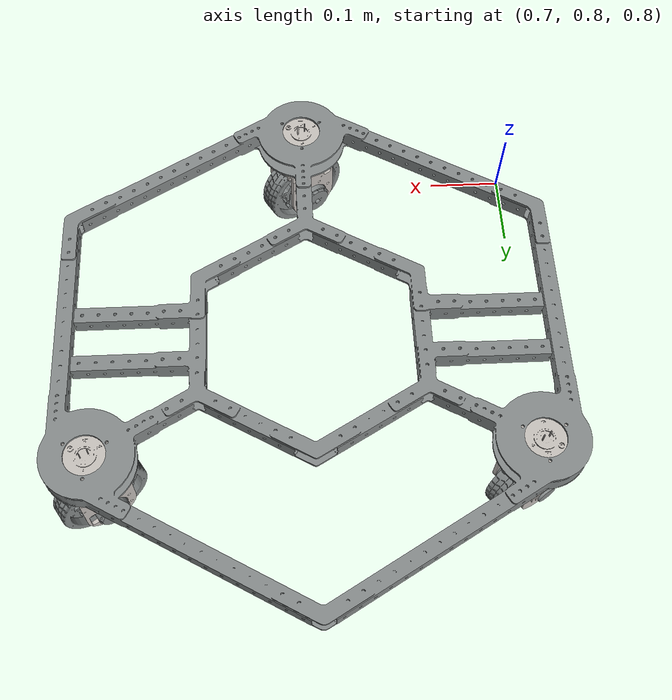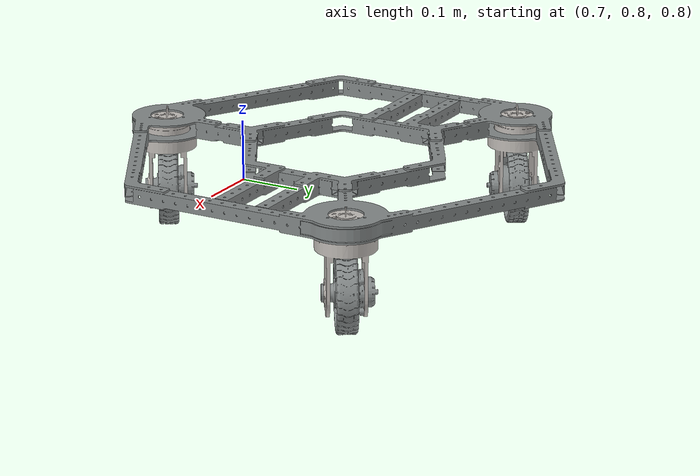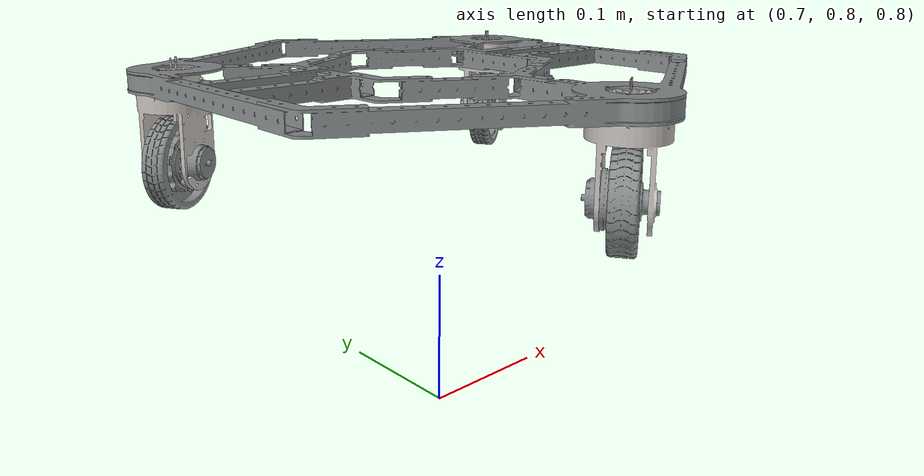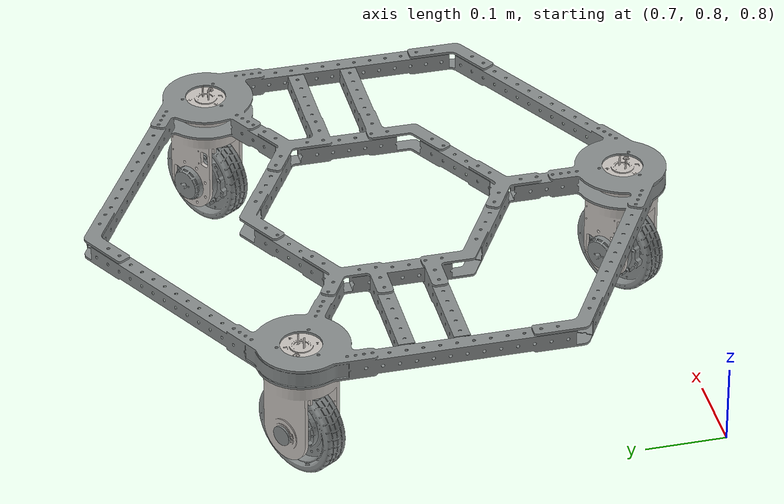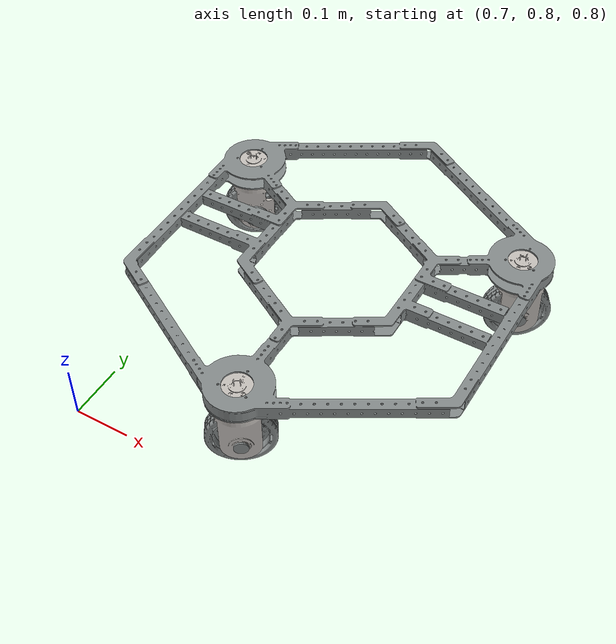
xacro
<?xml version='1.0'?>
<robot name="my_robot" xmlns:xacro="http://www.ros.org/wiki/xacro">

  <xacro:include filename="$(find my_robot_description)/urdf/myrobot_ros2_control.xacro" />
  <!-- 虚拟的根节点（用于全局定位） -->

  <link name="world_link"/>

  <!-- 虚拟关节，将 world_link 连接到 base_link，调整整体旋转 -->
  <joint name="world_joint" type="fixed">
    <origin xyz="1 1 1" rpy="0 -1.5708 0" /> <!-- 绕 Z 轴旋转 90 度 -->
    <parent link="world_link" />
    <child link="base_link" />
  </joint>

  <link
    name="base_link">
    <inertial>
      <origin
        xyz="-0.012503 0.15441 1.2733E-06"
        rpy="0 0 0" />
      <mass
        value="2.9926" />
      <inertia
        ixx="0.0071612"
        ixy="3.4189E-12"
        ixz="-6.9784E-12"
        iyy="0.0036971"
        iyz="2.6949E-10"
        izz="0.0035447" />
    </inertial>
    <visual>
      <origin
        xyz="0 0 0"
        rpy="0 0 0" />
      <geometry>
        <mesh
          filename="$(find my_robot_description)/meshes/base_link.STL" />

      </geometry>
      <material
        name="">
        <color
          rgba="0.52941 0.54902 0.54902 1" />
      </material>
    </visual>
    <collision>
      <origin
        xyz="0 0 0"
        rpy="0 0 0" />
      <geometry>
        <mesh
          filename="$(find my_robot_description)/meshes/base_link.STL" />
      </geometry>
    </collision>
  </link>
  <link
    name="wheel1">
    <inertial>
      <origin
        xyz="-0.042891 -0.00023895 0.010184"
        rpy="0 0 0" />
      <mass
        value="2.9855" />
      <inertia
        ixx="0.001527"
        ixy="1.1575E-05"
        ixz="-2.795E-06"
        iyy="0.0011138"
        iyz="-1.1939E-05"
        izz="0.0013147" />
    </inertial>
    <visual>
      <origin
        xyz="0 0 0"
        rpy="0 0 0" />
      <geometry>
        <mesh
          filename="$(find my_robot_description)/meshes/wheel1.STL" />
      </geometry>
      <material
        name="">
        <color
          rgba="0.77647 0.75686 0.73725 1" />
      </material>
    </visual>
    <collision>
      <origin
        xyz="0 0 0"
        rpy="0 0 0" />
      <geometry>
        <mesh
          filename="$(find my_robot_description)/meshes/wheel1.STL" />
      </geometry>
    </collision>
  </link>
  <joint
    name="base_wheel1"
    type="continuous">
    <origin
      xyz="-0.00299999999999984 -0.150775765619182 0"
      rpy="2.1 0 0" />
    <parent
      link="base_link" />
    <child
      link="wheel1" />
    <axis
      xyz="-1 0 0" />
  </joint>
  <link
    name="wheel1_1">
    <inertial>
      <origin
        xyz="-4.588E-06 0.0014967 -0.035074"
        rpy="0 0 0" />
      <mass
        value="0.93018" />
      <inertia
        ixx="0.0011543"
        ixy="-3.2673E-08"
        ixz="-9.8032E-09"
        iyy="0.0011577"
        iyz="-4.1516E-05"
        izz="0.0021796" />
    </inertial>
    <visual>
      <origin
        xyz="0 0 0"
        rpy="0 0 0" />
      <geometry>
        <mesh
          filename="$(find my_robot_description)/meshes/wheel1_1.STL" />
      </geometry>
      <material
        name="">
        <color
          rgba="0.52941 0.54902 0.54902 1" />
      </material>
    </visual>
    <collision>
      <origin
        xyz="0 0 0"
        rpy="0 0 0" />
      <geometry>
        <mesh
          filename="$(find my_robot_description)/meshes/wheel1_1.STL" />
      </geometry>
    </collision>
  </link>
  <joint
    name="wheel_wheel1"
    type="continuous">
    <origin
      xyz="-0.110999999999989 -0.00140571886434757 0.0344713497628748"
      rpy="0 0 0" />
    <parent
      link="wheel1" />
    <child
      link="wheel1_1" />
    <axis
      xyz="0 -0.0407454743289704 0.999169558344182" />
  </joint>
  <link
    name="wheel2">
    <inertial>
      <origin
        xyz="-0.042891 0.0089389 -0.0048849"
        rpy="0 0 0" />
      <mass
        value="2.9855" />
      <inertia
        ixx="0.001527"
        ixy="-8.2082E-06"
        ixz="-8.6269E-06"
        iyy="0.0012748"
        iyz="-8.1009E-05"
        izz="0.0011537" />
    </inertial>
    <visual>
      <origin
        xyz="0 0 0"
        rpy="0 0 0" />
      <geometry>
        <mesh
          filename="$(find my_robot_description)/meshes/wheel2.STL" />
      </geometry>
      <material
        name="">
        <color
          rgba="0.77647 0.75686 0.73725 1" />
      </material>
    </visual>
    <collision>
      <origin
        xyz="0 0 0"
        rpy="0 0 0" />
      <geometry>
        <mesh
          filename="$(find my_robot_description)/meshes/wheel2.STL" />
      </geometry>
    </collision>
  </link>
  <joint
    name="base_wheel2"
    type="continuous">
    <origin
      xyz="-0.00300000000000036 0.306937333383681 0.264258993872179"
      rpy="1.05 0 0" />
    <parent
      link="base_link" />
    <child
      link="wheel2" />
    <axis
      xyz="-1 0 0" />
  </joint>
  <link
    name="wheel2_2">
    <inertial>
      <origin
        xyz="-4.5877E-06 -0.031123 0.016241"
        rpy="0 0 0" />
      <mass
        value="0.93018" />
      <inertia
        ixx="0.0011543"
        ixy="7.8513E-09"
        ixz="3.3198E-08"
        iyy="0.0019601"
        iyz="-0.00042173"
        izz="0.0013772" />
    </inertial>
    <visual>
      <origin
        xyz="0 0 0"
        rpy="0 0 0" />
      <geometry>
        <mesh
          filename="$(find my_robot_description)/meshes/wheel2_2.STL" />
      </geometry>
      <material
        name="">
        <color
          rgba="0.52941 0.54902 0.54902 1" />
      </material>
    </visual>
    <collision>
      <origin
        xyz="0 0 0"
        rpy="0 0 0" />
      <geometry>
        <mesh
          filename="$(find my_robot_description)/meshes/wheel2_2.STL" />
      </geometry>
    </collision>
  </link>
  <joint
    name="wheel_wheel2"
    type="continuous">
    <origin
      xyz="-0.110999999999989 0.0305559240295608 -0.0160182866343324"
      rpy="0 0 0" />
    <parent
      link="wheel2" />
    <child
      link="wheel2_2" />
    <axis
      xyz="0 0.88567895737863 -0.464298163313945" />
  </joint>
  <link
    name="wheel3">
    <inertial>
      <origin
        xyz="-0.042891 -0.0087003 -0.0052982"
        rpy="0 0 0" />
      <mass
        value="2.9855" />
      <inertia
        ixx="0.001527"
        ixy="-3.3663E-06"
        ixz="1.1422E-05"
        iyy="0.0012542"
        iyz="9.2943E-05"
        izz="0.0011744" />
    </inertial>
    <visual>
      <origin
        xyz="0 0 0"
        rpy="0 0 0" />
      <geometry>
        <mesh
          filename="$(find my_robot_description)/meshes/wheel3.STL" />
      </geometry>
      <material
        name="">
        <color
          rgba="0.77647 0.75686 0.73725 1" />
      </material>
    </visual>
    <collision>
      <origin
        xyz="0 0 0"
        rpy="0 0 0" />
      <geometry>
        <mesh
          filename="$(find my_robot_description)/meshes/wheel3.STL" />
      </geometry>
    </collision>
  </link>
  <joint
    name="base_wheel3"
    type="continuous">
    <origin
      xyz="-0.00299999999999986 0.306937745652455 -0.264260701642284"
      rpy="0 0 0" />
    <parent
      link="base_link" />
    <child
      link="wheel3" />
    <axis
      xyz="-1 0 0" />
  </joint>
  <link
    name="wheel3_3">
    <inertial>
      <origin
        xyz="-4.5881E-06 0.029628 0.018831"
        rpy="0 0 0" />
      <mass
        value="0.93018" />
      <inertia
        ixx="0.0011543"
        ixy="2.4827E-08"
        ixz="-2.3398E-08"
        iyy="0.0018882"
        iyz="0.00046321"
        izz="0.0014491" />
    </inertial>
    <visual>
      <origin
        xyz="0 0 0"
        rpy="0 0 0" />
      <geometry>
        <mesh
          filename="$(find my_robot_description)/meshes/wheel3_3.STL" />
      </geometry>
      <material
        name="">
        <color
          rgba="0.52941 0.54902 0.54902 1" />
      </material>
    </visual>
    <collision>
      <origin
        xyz="0 0 0"
        rpy="0 0 0" />
      <geometry>
        <mesh
          filename="$(find my_robot_description)/meshes/wheel3_3.STL" />
      </geometry>
    </collision>
  </link>
  <joint
    name="wheel_wheel3"
    type="continuous">
    <origin
      xyz="-0.110999999999989 -0.0291514432084487 -0.0184511072530776"
      rpy="0 0 0" />
    <parent
      link="wheel3" />
    <child
      link="wheel3_3" />
    <axis
      xyz="0 -0.844969368360803 -0.534814702987815" />
  </joint>

  <!-- 加载 gazebo_ros_control 插件 -->

  <!-- 定义传动装置 -->
  <transmission bane="wheel1_transmission">
    <plugin>transmission_interface/SimpleTransmission</plugin>
    <actuator name="wheel1_motor" role="actuator1"/>
    <joint name="base_wheel1" role="joint1">
      <mechanicalReduction>1.0</mechanicalReduction>
    </joint>
  </transmission>

  <transmission bane="wheel2_transmission">
    <plugin>transmission_interface/SimpleTransmission</plugin>
    <actuator name="wheel2_motor" role="actuator2"/>
    <joint name="base_wheel2" role="joint2">
      <mechanicalReduction>1.0</mechanicalReduction>
    </joint>
  </transmission>

  <transmission bane="wheel3_transmission">
    <plugin>transmission_interface/SimpleTransmission</plugin>
    <actuator name="wheel3_motor" role="actuator3"/>
    <joint name="base_wheel3" role="joint3">
      <mechanicalReduction>1.0</mechanicalReduction>
    </joint>
  </transmission>

  <transmission bane="wheel11_transmission">
    <plugin>transmission_interface/SimpleTransmission</plugin>
    <actuator name="wheel11_motor" role="actuator11"/>
    <joint name="wheel_wheel1" role="joint11">
      <mechanicalReduction>1.0</mechanicalReduction>
    </joint>
  </transmission>

  <transmission bane="wheel22_transmission">
    <plugin>transmission_interface/SimpleTransmission</plugin>
    <actuator name="wheel22_motor" role="actuator22"/>
    <joint name="wheel_wheel2" role="joint22">
      <mechanicalReduction>1.0</mechanicalReduction>
    </joint>
  </transmission>

  <transmission bane="wheel33_transmission">
    <plugin>transmission_interface/SimpleTransmission</plugin>
    <actuator name="wheel33_motor" role="actuator33"/>
    <joint name="wheel_wheel3" role="joint33">
      <mechanicalReduction>1.0</mechanicalReduction>
    </joint>
  </transmission>

  <gazebo>
    <plugin filename="libgazebo_ros2_control.so" name="gazebo_ros2_control">
      <robot_param>robot_description</robot_param>
      <robot_param_node>robot_state_publisher</robot_param_node>
      <parameters>$(find myrobot_controller)/config/myrobot_controllers.yaml</parameters>
    </plugin>
  </gazebo>

</robot>
